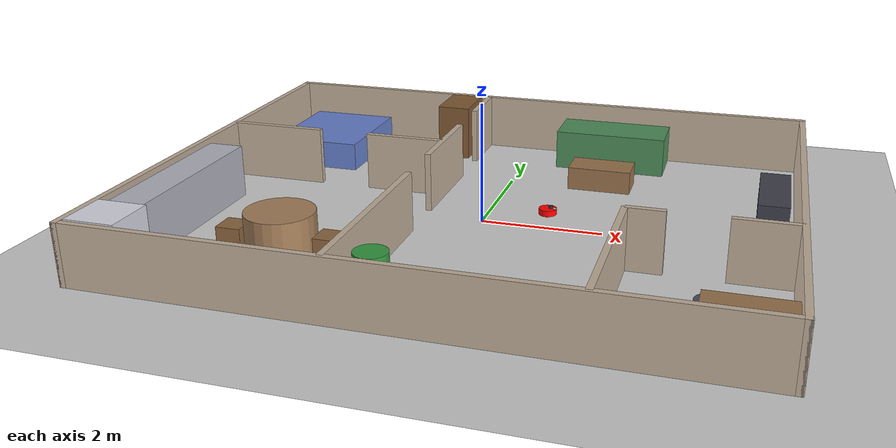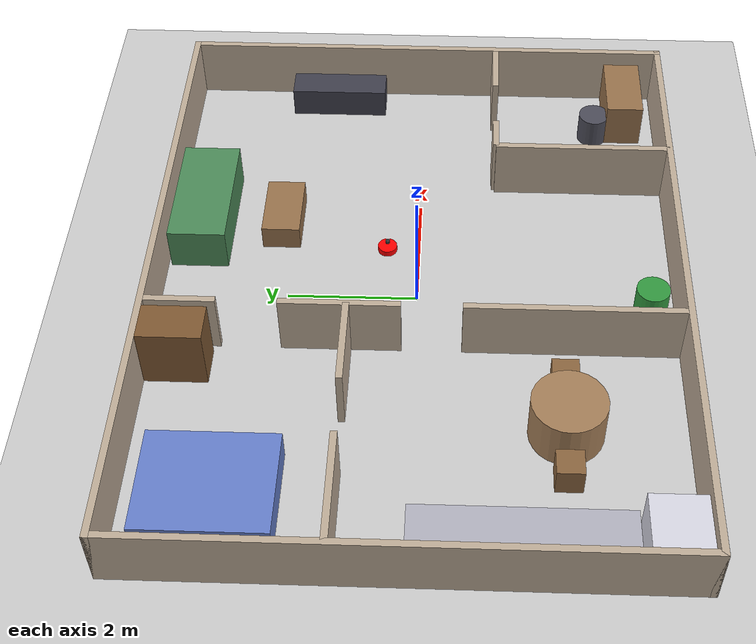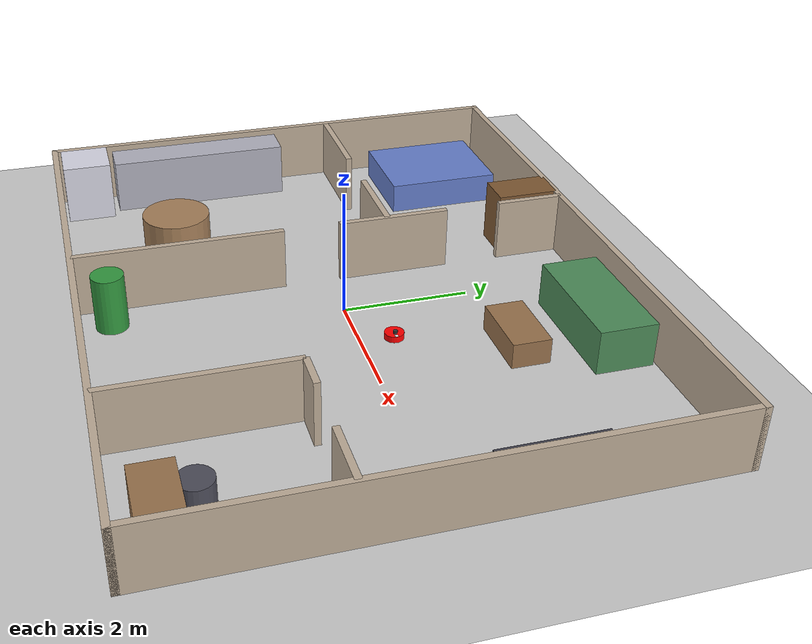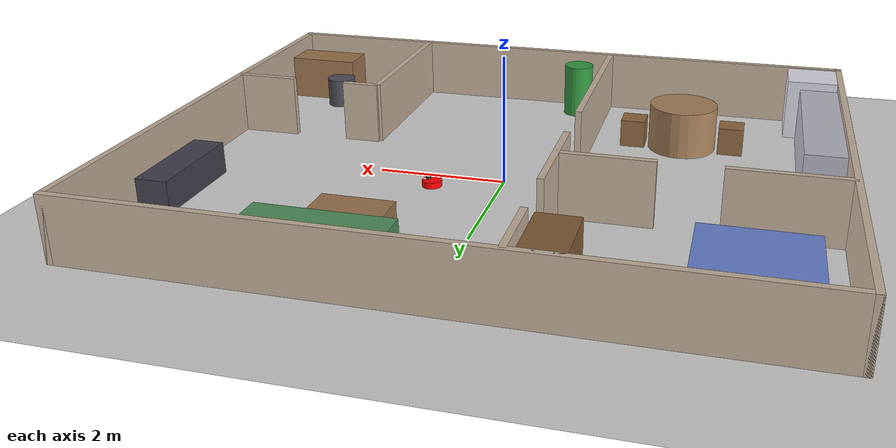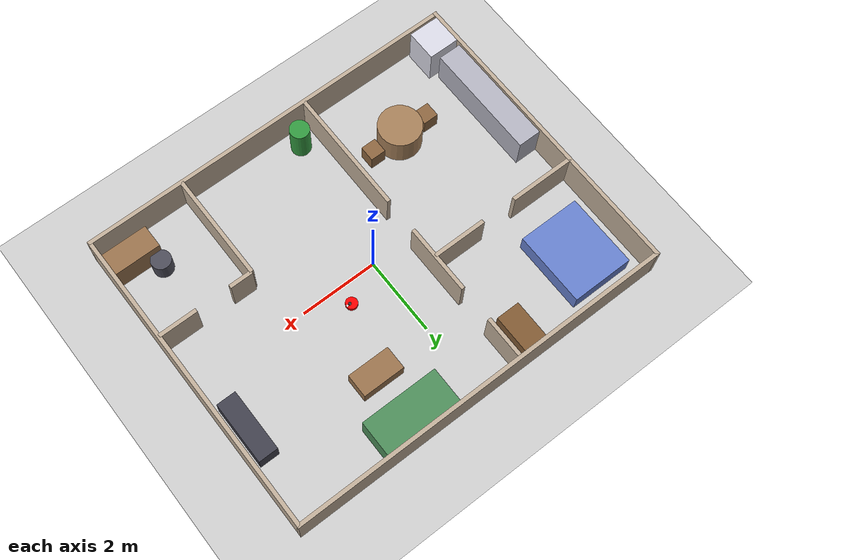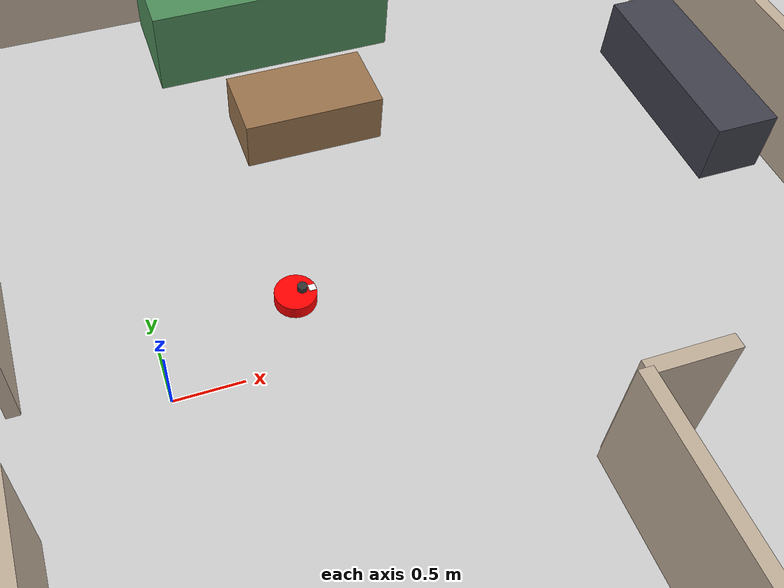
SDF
<?xml version="1.0" ?>
<sdf version="1.9">
    <world name="homerobot_world">
        <physics name="1ms" type="ignored">
            <max_step_size>0.001</max_step_size>
            <real_time_factor>1.0</real_time_factor>
        </physics>
        <plugin
            filename="gz-sim-physics-system"
            name="gz::sim::systems::Physics">
        </plugin>
        <plugin
            filename="gz-sim-user-commands-system"
            name="gz::sim::systems::UserCommands">
        </plugin>
        <plugin
            filename="gz-sim-scene-broadcaster-system"
            name="gz::sim::systems::SceneBroadcaster">
        </plugin>
        <plugin
            filename="gz-sim-sensors-system"
            name="gz::sim::systems::Sensors">
            <render_engine>ogre2</render_engine>
        </plugin>
        <plugin
            filename="gz-sim-imu-system"
            name="gz::sim::systems::Imu">
        </plugin>

        <gui fullscreen="0">
            <plugin filename="MinimalScene" name="3D View">
                <gz-gui>
                    <title>3D View</title>
                    <property type="bool" key="showTitleBar">false</property>
                    <property type="string" key="state">docked</property>
                </gz-gui>
                <engine>ogre2</engine>
                <scene>scene</scene>
                <sky></sky>
                <camera_clip>
                    <near>0.01</near>
                    <far>500</far>
                </camera_clip>
                <camera_pose>-5 0 2 0 0.4 0</camera_pose>
            </plugin>
            <plugin filename="GzSceneManager" name="Scene Manager">
                <gz-gui>
                    <property key="resizable" type="bool">false</property>
                    <property key="width" type="double">5</property>
                    <property key="height" type="double">5</property>
                    <property key="state" type="string">floating</property>
                    <property key="showTitleBar" type="bool">false</property>
                </gz-gui>
            </plugin>
            <plugin filename="InteractiveViewControl" name="Interactive view control">
                <gz-gui>
                    <property key="resizable" type="bool">false</property>
                    <property key="width" type="double">5</property>
                    <property key="height" type="double">5</property>
                    <property key="state" type="string">floating</property>
                    <property key="showTitleBar" type="bool">false</property>
                </gz-gui>
            </plugin>
            <plugin filename="CameraTracking" name="Camera Tracking">
                <gz-gui>
                    <property key="resizable" type="bool">false</property>
                    <property key="width" type="double">5</property>
                    <property key="height" type="double">5</property>
                    <property key="state" type="string">floating</property>
                    <property key="showTitleBar" type="bool">false</property>
                </gz-gui>
            </plugin>
            <plugin filename="WorldControl" name="World control">
                <gz-gui>
                    <title>World control</title>
                    <property type="bool" key="showTitleBar">false</property>
                    <property type="bool" key="resizable">false</property>
                    <property type="double" key="height">72</property>
                    <property type="double" key="width">121</property>
                    <property type="double" key="z">1</property>
                    <property type="string" key="state">floating</property>
                    <anchors target="3D View">
                        <line own="left" target="left"/>
                        <line own="bottom" target="bottom"/>
                    </anchors>
                </gz-gui>
                <play_pause>true</play_pause>
                <step>true</step>
                <start_paused>false</start_paused>
                <use_event_alt>true</use_event_alt>
            </plugin>
            <plugin filename="WorldStats" name="World stats">
                <gz-gui>
                    <title>World stats</title>
                    <property type="bool" key="showTitleBar">false</property>
                    <property type="bool" key="resizable">false</property>
                    <property type="double" key="height">110</property>
                    <property type="double" key="width">290</property>
                    <property type="double" key="z">1</property>
                    <property type="string" key="state">floating</property>
                    <anchors target="3D View">
                        <line own="right" target="right"/>
                        <line own="bottom" target="bottom"/>
                    </anchors>
                </gz-gui>
                <sim_time>true</sim_time>
                <real_time>true</real_time>
                <real_time_factor>true</real_time_factor>
                <iterations>true</iterations>
            </plugin>
            <plugin filename="EntityTree" name="Entity tree">
            </plugin>
        </gui>

        <light type="directional" name="sun">
            <cast_shadows>true</cast_shadows>
            <pose>0 0 10 0 0 0</pose>
            <diffuse>0.8 0.8 0.8 1</diffuse>
            <specular>0.2 0.2 0.2 1</specular>
            <attenuation>
                <range>1000</range>
                <constant>0.9</constant>
                <linear>0.01</linear>
                <quadratic>0.001</quadratic>
            </attenuation>
            <direction>-0.5 0.1 -0.9</direction>
        </light>

        <model name="ground_plane">
            <static>true</static>
            <link name="link">
                <collision name="collision">
                    <geometry>
                        <plane>
                            <normal>0 0 1</normal>
                            <size>100 100</size>
                        </plane>
                    </geometry>
                </collision>
                <visual name="visual">
                    <geometry>
                        <plane>
                            <normal>0 0 1</normal>
                            <size>100 100</size>
                        </plane>
                    </geometry>
                    <material>
                        <ambient>0.8 0.8 0.8 1</ambient>
                        <diffuse>0.8 0.8 0.8 1</diffuse>
                        <specular>0.8 0.8 0.8 1</specular>
                    </material>
                </visual>
            </link>
        </model>

        <!-- House: 4 rooms (bedroom, kitchen, living, study) with 0.9m
             door openings and furniture. Same world name as sim.world so
             the ground-truth topic and tooling stay identical. -->
        <model name="house">
            <static>true</static>
            <pose>0 0 0.5 0 0 0</pose>
            <link name="structure">
                <collision name="wall0">
                    <pose>0.0 4.0 0.0 0 0 0</pose>
                    <geometry><box><size>10.1 0.1 1.0</size></box></geometry>
                </collision>
                <visual name="wall0_visual">
                    <pose>0.0 4.0 0.0 0 0 0</pose>
                    <geometry><box><size>10.1 0.1 1.0</size></box></geometry>
                    <material><ambient>0.75 0.68 0.6 1</ambient><diffuse>0.75 0.68 0.6 1</diffuse></material>
                </visual>
                <collision name="wall1">
                    <pose>0.0 -4.0 0.0 0 0 0</pose>
                    <geometry><box><size>10.1 0.1 1.0</size></box></geometry>
                </collision>
                <visual name="wall1_visual">
                    <pose>0.0 -4.0 0.0 0 0 0</pose>
                    <geometry><box><size>10.1 0.1 1.0</size></box></geometry>
                    <material><ambient>0.75 0.68 0.6 1</ambient><diffuse>0.75 0.68 0.6 1</diffuse></material>
                </visual>
                <collision name="wall2">
                    <pose>-5.0 0.0 0.0 0 0 0</pose>
                    <geometry><box><size>0.1 8.1 1.0</size></box></geometry>
                </collision>
                <visual name="wall2_visual">
                    <pose>-5.0 0.0 0.0 0 0 0</pose>
                    <geometry><box><size>0.1 8.1 1.0</size></box></geometry>
                    <material><ambient>0.75 0.68 0.6 1</ambient><diffuse>0.75 0.68 0.6 1</diffuse></material>
                </visual>
                <collision name="wall3">
                    <pose>5.0 0.0 0.0 0 0 0</pose>
                    <geometry><box><size>0.1 8.1 1.0</size></box></geometry>
                </collision>
                <visual name="wall3_visual">
                    <pose>5.0 0.0 0.0 0 0 0</pose>
                    <geometry><box><size>0.1 8.1 1.0</size></box></geometry>
                    <material><ambient>0.75 0.68 0.6 1</ambient><diffuse>0.75 0.68 0.6 1</diffuse></material>
                </visual>
                <collision name="wall4">
                    <pose>-1.0 -2.35 0.0 0 0 0</pose>
                    <geometry><box><size>0.1 3.3 1.0</size></box></geometry>
                </collision>
                <visual name="wall4_visual">
                    <pose>-1.0 -2.35 0.0 0 0 0</pose>
                    <geometry><box><size>0.1 3.3 1.0</size></box></geometry>
                    <material><ambient>0.75 0.68 0.6 1</ambient><diffuse>0.75 0.68 0.6 1</diffuse></material>
                </visual>
                <collision name="wall5">
                    <pose>-1.0 1.1 0.0 0 0 0</pose>
                    <geometry><box><size>0.1 1.8 1.0</size></box></geometry>
                </collision>
                <visual name="wall5_visual">
                    <pose>-1.0 1.1 0.0 0 0 0</pose>
                    <geometry><box><size>0.1 1.8 1.0</size></box></geometry>
                    <material><ambient>0.75 0.68 0.6 1</ambient><diffuse>0.75 0.68 0.6 1</diffuse></material>
                </visual>
                <collision name="wall6">
                    <pose>-1.0 3.45 0.0 0 0 0</pose>
                    <geometry><box><size>0.1 1.1 1.0</size></box></geometry>
                </collision>
                <visual name="wall6_visual">
                    <pose>-1.0 3.45 0.0 0 0 0</pose>
                    <geometry><box><size>0.1 1.1 1.0</size></box></geometry>
                    <material><ambient>0.75 0.68 0.6 1</ambient><diffuse>0.75 0.68 0.6 1</diffuse></material>
                </visual>
                <collision name="wall7">
                    <pose>-4.15 1.0 0.0 0 0 0</pose>
                    <geometry><box><size>1.7 0.1 1.0</size></box></geometry>
                </collision>
                <visual name="wall7_visual">
                    <pose>-4.15 1.0 0.0 0 0 0</pose>
                    <geometry><box><size>1.7 0.1 1.0</size></box></geometry>
                    <material><ambient>0.75 0.68 0.6 1</ambient><diffuse>0.75 0.68 0.6 1</diffuse></material>
                </visual>
                <collision name="wall8">
                    <pose>-1.7 1.0 0.0 0 0 0</pose>
                    <geometry><box><size>1.4 0.1 1.0</size></box></geometry>
                </collision>
                <visual name="wall8_visual">
                    <pose>-1.7 1.0 0.0 0 0 0</pose>
                    <geometry><box><size>1.4 0.1 1.0</size></box></geometry>
                    <material><ambient>0.75 0.68 0.6 1</ambient><diffuse>0.75 0.68 0.6 1</diffuse></material>
                </visual>
                <collision name="wall9">
                    <pose>2.5 -2.6 0.0 0 0 0</pose>
                    <geometry><box><size>0.1 2.8 1.0</size></box></geometry>
                </collision>
                <visual name="wall9_visual">
                    <pose>2.5 -2.6 0.0 0 0 0</pose>
                    <geometry><box><size>0.1 2.8 1.0</size></box></geometry>
                    <material><ambient>0.75 0.68 0.6 1</ambient><diffuse>0.75 0.68 0.6 1</diffuse></material>
                </visual>
                <collision name="wall10">
                    <pose>2.8 -1.2 0.0 0 0 0</pose>
                    <geometry><box><size>0.6 0.1 1.0</size></box></geometry>
                </collision>
                <visual name="wall10_visual">
                    <pose>2.8 -1.2 0.0 0 0 0</pose>
                    <geometry><box><size>0.6 0.1 1.0</size></box></geometry>
                    <material><ambient>0.75 0.68 0.6 1</ambient><diffuse>0.75 0.68 0.6 1</diffuse></material>
                </visual>
                <collision name="wall11">
                    <pose>4.5 -1.2 0.0 0 0 0</pose>
                    <geometry><box><size>1.0 0.1 1.0</size></box></geometry>
                </collision>
                <visual name="wall11_visual">
                    <pose>4.5 -1.2 0.0 0 0 0</pose>
                    <geometry><box><size>1.0 0.1 1.0</size></box></geometry>
                    <material><ambient>0.75 0.68 0.6 1</ambient><diffuse>0.75 0.68 0.6 1</diffuse></material>
                </visual>
                <collision name="bed">
                    <pose>-3.8 2.7 -0.25 0 0 0</pose>
                    <geometry><box><size>1.6 1.9 0.5</size></box></geometry>
                </collision>
                <visual name="bed_visual">
                    <pose>-3.8 2.7 -0.25 0 0 0</pose>
                    <geometry><box><size>1.6 1.9 0.5</size></box></geometry>
                    <material><ambient>0.4 0.5 0.8 1</ambient><diffuse>0.4 0.5 0.8 1</diffuse></material>
                </visual>
                <collision name="wardrobe">
                    <pose>-1.45 3.5 0.0 0 0 0</pose>
                    <geometry><box><size>0.6 1.0 1.0</size></box></geometry>
                </collision>
                <visual name="wardrobe_visual">
                    <pose>-1.45 3.5 0.0 0 0 0</pose>
                    <geometry><box><size>0.6 1.0 1.0</size></box></geometry>
                    <material><ambient>0.5 0.35 0.2 1</ambient><diffuse>0.5 0.35 0.2 1</diffuse></material>
                </visual>
                <collision name="kitchen_counter">
                    <pose>-4.65 -1.5 -0.04999999999999999 0 0 0</pose>
                    <geometry><box><size>0.6 3.0 0.9</size></box></geometry>
                </collision>
                <visual name="kitchen_counter_visual">
                    <pose>-4.65 -1.5 -0.04999999999999999 0 0 0</pose>
                    <geometry><box><size>0.6 3.0 0.9</size></box></geometry>
                    <material><ambient>0.7 0.7 0.75 1</ambient><diffuse>0.7 0.7 0.75 1</diffuse></material>
                </visual>
                <collision name="fridge">
                    <pose>-4.55 -3.5 0.0 0 0 0</pose>
                    <geometry><box><size>0.8 0.8 1.0</size></box></geometry>
                </collision>
                <visual name="fridge_visual">
                    <pose>-4.55 -3.5 0.0 0 0 0</pose>
                    <geometry><box><size>0.8 0.8 1.0</size></box></geometry>
                    <material><ambient>0.85 0.85 0.9 1</ambient><diffuse>0.85 0.85 0.9 1</diffuse></material>
                </visual>
                <collision name="chair_k1">
                    <pose>-3.3 -2.2 -0.275 0 0 0</pose>
                    <geometry><box><size>0.4 0.4 0.45</size></box></geometry>
                </collision>
                <visual name="chair_k1_visual">
                    <pose>-3.3 -2.2 -0.275 0 0 0</pose>
                    <geometry><box><size>0.4 0.4 0.45</size></box></geometry>
                    <material><ambient>0.55 0.4 0.25 1</ambient><diffuse>0.55 0.4 0.25 1</diffuse></material>
                </visual>
                <collision name="chair_k2">
                    <pose>-1.7 -2.2 -0.275 0 0 0</pose>
                    <geometry><box><size>0.4 0.4 0.45</size></box></geometry>
                </collision>
                <visual name="chair_k2_visual">
                    <pose>-1.7 -2.2 -0.275 0 0 0</pose>
                    <geometry><box><size>0.4 0.4 0.45</size></box></geometry>
                    <material><ambient>0.55 0.4 0.25 1</ambient><diffuse>0.55 0.4 0.25 1</diffuse></material>
                </visual>
                <collision name="sofa">
                    <pose>1.6 3.45 -0.15000000000000002 0 0 0</pose>
                    <geometry><box><size>2.0 0.9 0.7</size></box></geometry>
                </collision>
                <visual name="sofa_visual">
                    <pose>1.6 3.45 -0.15000000000000002 0 0 0</pose>
                    <geometry><box><size>2.0 0.9 0.7</size></box></geometry>
                    <material><ambient>0.3 0.55 0.35 1</ambient><diffuse>0.3 0.55 0.35 1</diffuse></material>
                </visual>
                <collision name="coffee_table">
                    <pose>1.6 2.2 -0.3 0 0 0</pose>
                    <geometry><box><size>1.1 0.6 0.4</size></box></geometry>
                </collision>
                <visual name="coffee_table_visual">
                    <pose>1.6 2.2 -0.3 0 0 0</pose>
                    <geometry><box><size>1.1 0.6 0.4</size></box></geometry>
                    <material><ambient>0.6 0.45 0.3 1</ambient><diffuse>0.6 0.45 0.3 1</diffuse></material>
                </visual>
                <collision name="tv_stand">
                    <pose>4.6 1.5 -0.25 0 0 0</pose>
                    <geometry><box><size>0.5 1.6 0.5</size></box></geometry>
                </collision>
                <visual name="tv_stand_visual">
                    <pose>4.6 1.5 -0.25 0 0 0</pose>
                    <geometry><box><size>0.5 1.6 0.5</size></box></geometry>
                    <material><ambient>0.25 0.25 0.3 1</ambient><diffuse>0.25 0.25 0.3 1</diffuse></material>
                </visual>
                <collision name="desk">
                    <pose>4.35 -3.4 -0.125 0 0 0</pose>
                    <geometry><box><size>1.2 0.6 0.75</size></box></geometry>
                </collision>
                <visual name="desk_visual">
                    <pose>4.35 -3.4 -0.125 0 0 0</pose>
                    <geometry><box><size>1.2 0.6 0.75</size></box></geometry>
                    <material><ambient>0.6 0.45 0.3 1</ambient><diffuse>0.6 0.45 0.3 1</diffuse></material>
                </visual>
                <collision name="kitchen_table">
                    <pose>-2.5 -2.2 -0.125 0 0 0</pose>
                    <geometry><cylinder><radius>0.55</radius><length>0.75</length></cylinder></geometry>
                </collision>
                <visual name="kitchen_table_visual">
                    <pose>-2.5 -2.2 -0.125 0 0 0</pose>
                    <geometry><cylinder><radius>0.55</radius><length>0.75</length></cylinder></geometry>
                    <material><ambient>0.65 0.5 0.35 1</ambient><diffuse>0.65 0.5 0.35 1</diffuse></material>
                </visual>
                <collision name="plant">
                    <pose>-0.5 -3.5 -0.04999999999999999 0 0 0</pose>
                    <geometry><cylinder><radius>0.25</radius><length>0.9</length></cylinder></geometry>
                </collision>
                <visual name="plant_visual">
                    <pose>-0.5 -3.5 -0.04999999999999999 0 0 0</pose>
                    <geometry><cylinder><radius>0.25</radius><length>0.9</length></cylinder></geometry>
                    <material><ambient>0.2 0.6 0.25 1</ambient><diffuse>0.2 0.6 0.25 1</diffuse></material>
                </visual>
                <collision name="desk_chair">
                    <pose>3.9 -2.9 -0.25 0 0 0</pose>
                    <geometry><cylinder><radius>0.25</radius><length>0.5</length></cylinder></geometry>
                </collision>
                <visual name="desk_chair_visual">
                    <pose>3.9 -2.9 -0.25 0 0 0</pose>
                    <geometry><cylinder><radius>0.25</radius><length>0.5</length></cylinder></geometry>
                    <material><ambient>0.3 0.3 0.35 1</ambient><diffuse>0.3 0.3 0.35 1</diffuse></material>
                </visual>
            </link>
        </model>

        <!-- Include the robot -->
        <include>
            <uri>model://homerobot</uri>
            <name>homerobot</name>
            <pose>1 0.5 0.1 0 0 0</pose>
        </include>
    </world>
</sdf>

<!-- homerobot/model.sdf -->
<sdf version="1.9">
    <model name='homerobot'>
        <static>0</static>
        <pose>0 0 0.05 0 0 0</pose>

        <!-- Base Link -->
        <link name='base_link'>
            <inertial>
                <mass>2.0</mass>
                <inertia>
                    <ixx>0.01</ixx>
                    <ixy>0</ixy>
                    <ixz>0</ixz>
                    <iyy>0.01</iyy>
                    <iyz>0</iyz>
                    <izz>0.02</izz>
                </inertia>
            </inertial>
            <collision name='collision'>
                <geometry>
                    <cylinder>
                        <radius>0.15</radius>
                        <length>0.1</length>
                    </cylinder>
                </geometry>
            </collision>
            <visual name='visual'>
                <geometry>
                    <cylinder>
                        <radius>0.15</radius>
                        <length>0.1</length>
                    </cylinder>
                </geometry>
                <material>
                    <ambient>0.8 0.0 0.0 1</ambient>
                    <diffuse>1.0 0.0 0.0 1</diffuse>
                    <specular>0.5 0.5 0.5 1</specular>
                </material>
            </visual>
            <!-- Front Indicator (White box) -->
            <visual name='front_indicator'>
                <pose>0.12 0 0.05 0 0 0</pose>
                <geometry>
                    <box>
                        <size>0.05 0.05 0.01</size>
                    </box>
                </geometry>
                <material>
                    <ambient>1 1 1 1</ambient>
                    <diffuse>1 1 1 1</diffuse>
                </material>
            </visual>
            <!-- IMU Sensor on base_link -->
            <sensor name='imu_sensor' type='imu'>
                <always_on>1</always_on>
                <update_rate>100</update_rate>
                <visualize>true</visualize>
                <topic>/model/homerobot/imu</topic>
            </sensor>
        </link>

        <!-- Left Wheel -->
        <link name='left_wheel'>
            <pose relative_to='base_link'>0 0.12 -0.02 1.5708 0 0</pose>
            <inertial>
                <mass>0.2</mass>
                <inertia>
                    <ixx>0.0001</ixx>
                    <ixy>0</ixy>
                    <ixz>0</ixz>
                    <iyy>0.0001</iyy>
                    <iyz>0</iyz>
                    <izz>0.0002</izz>
                </inertia>
            </inertial>
            <collision name='collision'>
                <geometry>
                    <cylinder>
                        <radius>0.0399</radius>
                        <length>0.02</length>
                    </cylinder>
                </geometry>
                <surface>
                    <friction>
                        <ode>
                            <mu>1.0</mu>
                            <mu2>1.0</mu2>
                        </ode>
                    </friction>
                </surface>
            </collision>
            <visual name='visual'>
                <geometry>
                    <cylinder>
                        <radius>0.0399</radius>
                        <length>0.02</length>
                    </cylinder>
                </geometry>
                <material>
                    <ambient>0.4 0.0 0.0 1</ambient>
                    <diffuse>0.5 0.0 0.0 1</diffuse>
                    <specular>0.5 0.5 0.5 1</specular>
                </material>
            </visual>
        </link>

        <!-- Right Wheel -->
        <link name='right_wheel'>
            <pose relative_to='base_link'>0 -0.12 -0.02 1.5708 0 0</pose>
            <inertial>
                <mass>0.2</mass>
                <inertia>
                    <ixx>0.0001</ixx>
                    <ixy>0</ixy>
                    <ixz>0</ixz>
                    <iyy>0.0001</iyy>
                    <iyz>0</iyz>
                    <izz>0.0002</izz>
                </inertia>
            </inertial>
            <collision name='collision'>
                <geometry>
                    <cylinder>
                        <radius>0.0399</radius>
                        <length>0.02</length>
                    </cylinder>
                </geometry>
                <surface>
                    <friction>
                        <ode>
                            <mu>1.0</mu>
                            <mu2>1.0</mu2>
                        </ode>
                    </friction>
                </surface>
            </collision>
            <visual name='visual'>
                <geometry>
                    <cylinder>
                        <radius>0.0399</radius>
                        <length>0.02</length>
                    </cylinder>
                </geometry>
                <material>
                    <ambient>0.4 0.0 0.0 1</ambient>
                    <diffuse>0.5 0.0 0.0 1</diffuse>
                    <specular>0.5 0.5 0.5 1</specular>
                </material>
            </visual>
        </link>

        <!-- Castor Wheel -->
        <link name='castor'>
            <pose relative_to='base_link'>0.11 0 -0.045 0 0 0</pose>
            <inertial>
                <mass>0.1</mass>
                <inertia>
                    <ixx>0.00001</ixx>
                    <ixy>0</ixy>
                    <ixz>0</ixz>
                    <iyy>0.00001</iyy>
                    <iyz>0</iyz>
                    <izz>0.00001</izz>
                </inertia>
            </inertial>
            <collision name='collision'>
                <geometry>
                    <sphere>
                        <radius>0.015</radius>
                    </sphere>
                </geometry>
                <surface>
                    <friction>
                        <ode>
                            <mu>0.1</mu>
                            <mu2>0.1</mu2>
                        </ode>
                    </friction>
                </surface>
            </collision>
            <visual name='visual'>
                <geometry>
                    <sphere>
                        <radius>0.015</radius>
                    </sphere>
                </geometry>
                <material>
                    <ambient>0.8 0.8 0.8 1</ambient>
                    <diffuse>0.8 0.8 0.8 1</diffuse>
                </material>
            </visual>
        </link>

        <!-- Lidar Link -->
        <link name='lidar_link'>
            <pose relative_to='base_link'>0.05 0 0.08 0 0 0</pose>
            <inertial>
                <mass>0.1</mass>
                <inertia>
                    <ixx>0.0001</ixx>
                    <ixy>0</ixy>
                    <ixz>0</ixz>
                    <iyy>0.0001</iyy>
                    <iyz>0</iyz>
                    <izz>0.0001</izz>
                </inertia>
            </inertial>
            <visual name='visual'>
                <geometry>
                    <cylinder>
                        <radius>0.035</radius>
                        <length>0.04</length>
                    </cylinder>
                </geometry>
                <material>
                    <ambient>0 0 0 1</ambient>
                    <diffuse>0.2 0.2 0.2 1</diffuse>
                </material>
            </visual>
            <sensor name='lidar' type='gpu_lidar'>
                <always_on>1</always_on>
                <update_rate>5</update_rate>
                <topic>/model/homerobot/lidar</topic>
                <lidar>
                    <scan>
                        <horizontal>
                            <samples>180</samples>
                            <resolution>1</resolution>
                            <min_angle>-3.14159</min_angle>
                            <max_angle>3.14159</max_angle>
                        </horizontal>
                    </scan>
                    <range>
                        <min>0.15</min>
                        <max>12.0</max>
                        <resolution>0.01</resolution>
                    </range>
                    <noise>
                        <type>gaussian</type>
                        <mean>0.0</mean>
                        <stddev>0.01</stddev>
                    </noise>
                </lidar>
                <always_on>1</always_on>
                <visualize>true</visualize>
            </sensor>
        </link>

        <!-- Joints -->
        <joint name='left_wheel_joint' type='revolute'>
            <parent>base_link</parent>
            <child>left_wheel</child>
            <axis>
                <xyz expressed_in='__model__'>0 1 0</xyz>
                <limit>
                    <lower>-1e16</lower>
                    <upper>1e16</upper>
                </limit>
            </axis>
        </joint>

        <joint name='right_wheel_joint' type='revolute'>
            <parent>base_link</parent>
            <child>right_wheel</child>
            <axis>
                <xyz expressed_in='__model__'>0 1 0</xyz>
                <limit>
                    <lower>-1e16</lower>
                    <upper>1e16</upper>
                </limit>
            </axis>
        </joint>

        <joint name='castor_joint' type='ball'>
            <parent>base_link</parent>
            <child>castor</child>
        </joint>

        <joint name='lidar_joint' type='fixed'>
            <parent>base_link</parent>
            <child>lidar_link</child>
        </joint>

        <!-- Joint Effort (Torque) Control -->
        <plugin
            filename="gz-sim-apply-joint-force-system"
            name="gz::sim::systems::ApplyJointForce">
            <joint_name>left_wheel_joint</joint_name>
        </plugin>
        <plugin
            filename="gz-sim-apply-joint-force-system"
            name="gz::sim::systems::ApplyJointForce">
            <joint_name>right_wheel_joint</joint_name>
        </plugin>

        <!-- Joint State Publisher for Encoders -->
        <plugin
            filename="gz-sim-joint-state-publisher-system"
            name="gz::sim::systems::JointStatePublisher">
            <topic>/model/homerobot/joint_state</topic>
            <joint_name>left_wheel_joint</joint_name>
            <joint_name>right_wheel_joint</joint_name>
        </plugin>

    </model>
</sdf>
